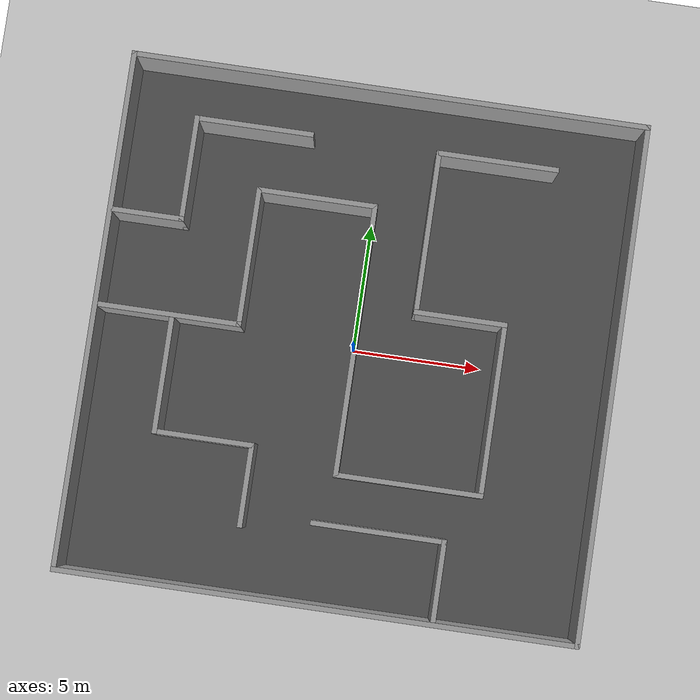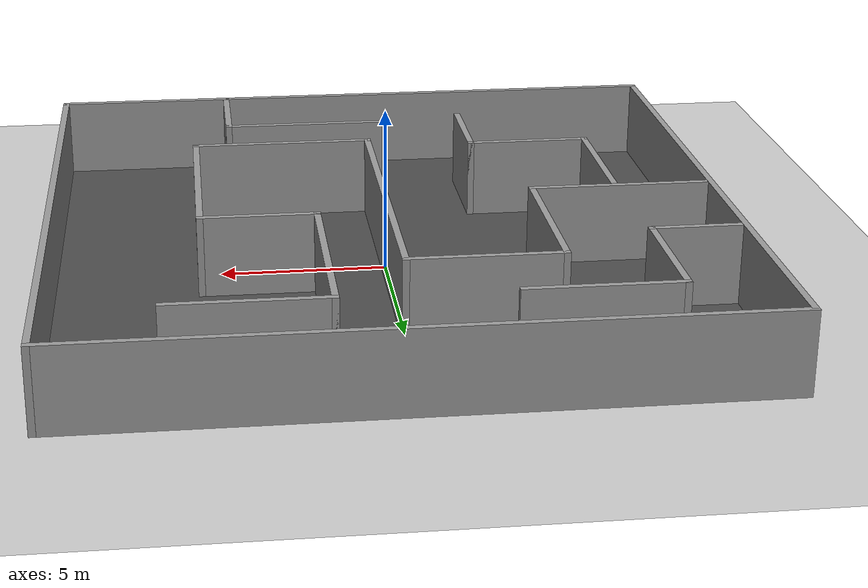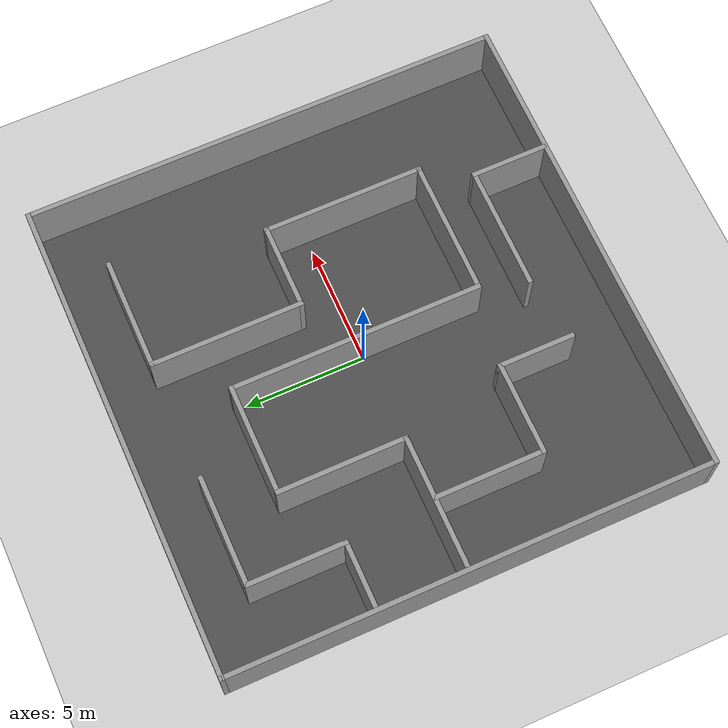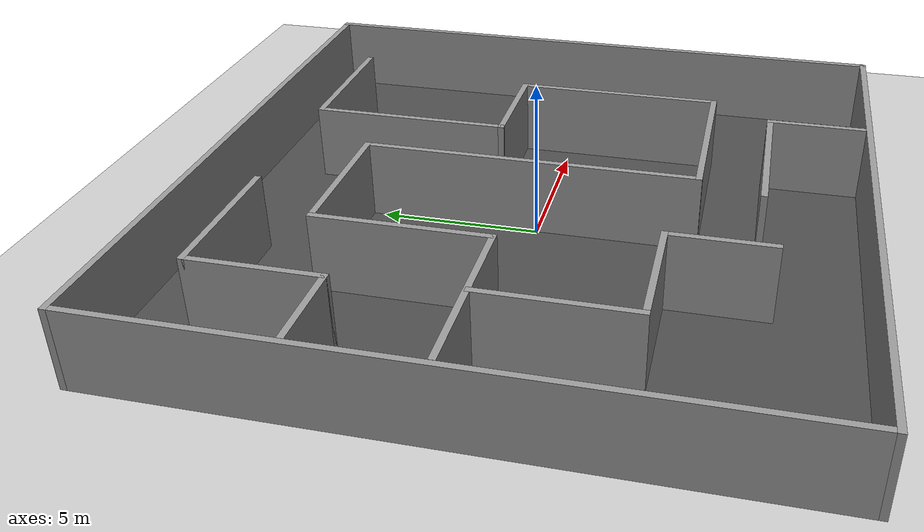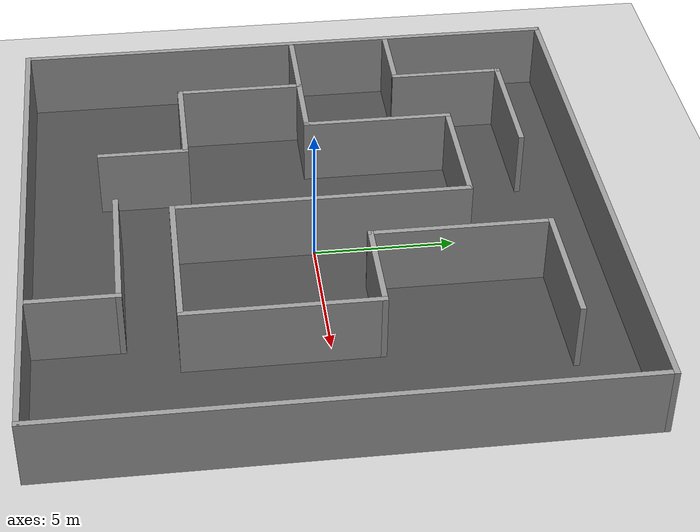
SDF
<sdf version="1.4">
 <world name="default">
  <light name="sun" type="directional">
   <pose>0 0 10 0 -0 0</pose>
   <diffuse>0.8 0.8 0.8 1</diffuse>
   <specular>0.2 0.2 0.2 1</specular>
   <attenuation>
    <range>1000</range>
    <constant>0.9</constant>
    <linear>0.01</linear>
    <quadratic>0.001</quadratic>
   </attenuation>
   <direction>-0.5 0.1 -0.9</direction>
  </light>
  <model name="ground_plane">
   <static>1</static>
   <link name="link">
    <collision name="collision">
     <geometry><plane><normal>0 0 1</normal><size>100 100</size></plane></geometry>
     <surface><friction><ode><mu>100</mu><mu2>50</mu2></ode></friction></surface>
    </collision>
    <visual name="visual">
     <cast_shadows>0</cast_shadows>
     <geometry><plane><normal>0 0 1</normal><size>100 100</size></plane></geometry>
     <material>
      <script><uri>file://media/materials/scripts/gazebo.material</uri><name>Gazebo/Grey</name></script>
     </material>
    </visual>
    <velocity_decay><linear>0</linear><angular>0</angular></velocity_decay>
   </link>
  </model>
  <physics type="ode">
   <max_step_size>0.001</max_step_size>
   <real_time_factor>1</real_time_factor>
   <real_time_update_rate>1000</real_time_update_rate>
   <gravity>0 0 -9.8</gravity>
  </physics>
  <scene><ambient>0.4 0.4 0.4 1</ambient><background>0.7 0.7 0.7 1</background><shadows>1</shadows></scene>
  <spherical_coordinates>
   <surface_model>EARTH_WGS84</surface_model>
   <latitude_deg>0</latitude_deg>
   <longitude_deg>0</longitude_deg>
   <elevation>0</elevation>
   <heading_deg>0</heading_deg>
  </spherical_coordinates>
  <model name="asphalt_plane">
   <static>1</static>
   <link name="link">
    <collision name="collision"><geometry><box><size>20 20 0.1</size></box></geometry></collision>
    <visual name="visual">
     <cast_shadows>0</cast_shadows>
     <geometry><box><size>20 20 0.1</size></box></geometry>
     <material>
      <script>
       <uri>model://asphalt_plane/materials/scripts</uri>
       <uri>model://asphalt_plane/materials/textures</uri>
       <name>vrc/asphalt</name>
      </script>
     </material>
    </visual>
    <velocity_decay><linear>0</linear><angular>0</angular></velocity_decay>
   </link>
  </model>
  <model name="house2d_2">
   <link name="Wall_2">
    <collision name="Wall_2_Collision">
     <geometry><box><size>20.2 0.2 2.5</size></box></geometry>
     <pose>0 0 1.25 0 -0 0</pose>
    </collision>
    <visual name="Wall_2_Visual">
     <pose>0 0 1.25 0 -0 0</pose>
     <geometry><box><size>20.2 0.2 2.5</size></box></geometry>
     <material>
      <script><uri>file://media/materials/scripts/gazebo.material</uri><name>Gazebo/Grey</name></script>
     </material>
    </visual>
    <velocity_decay><linear>0</linear><angular>0</angular></velocity_decay>
    <pose>-0 -10 0 0 -0 0</pose>
   </link>
   <link name="Wall_3">
    <collision name="Wall_3_Collision">
     <geometry><box><size>20.2 0.2 2.5</size></box></geometry>
     <pose>0 0 1.25 0 -0 0</pose>
    </collision>
    <visual name="Wall_3_Visual">
     <pose>0 0 1.25 0 -0 0</pose>
     <geometry><box><size>20.2 0.2 2.5</size></box></geometry>
     <material>
      <script><uri>file://media/materials/scripts/gazebo.material</uri><name>Gazebo/Grey</name></script>
     </material>
    </visual>
    <velocity_decay><linear>0</linear><angular>0</angular></velocity_decay>
    <pose>10 0 0 0 -0 1.5708</pose>
   </link>
   <link name="Wall_33">
    <collision name="Wall_33_Collision">
     <geometry><box><size>5.55025 0.2 2.5</size></box></geometry>
     <pose>0 0 1.25 0 -0 0</pose>
    </collision>
    <visual name="Wall_33_Visual">
     <pose>0 0 1.25 0 -0 0</pose>
     <geometry><box><size>5.55025 0.2 2.5</size></box></geometry>
     <material>
      <script><uri>file://media/materials/scripts/gazebo.material</uri><name>Gazebo/Grey</name></script>
     </material>
    </visual>
    <velocity_decay><linear>0</linear><angular>0</angular></velocity_decay>
    <pose>-7.12043 0.208203 0 0 -0 0</pose>
   </link>
   <link name="Wall_34">
    <collision name="Wall_34_Collision">
     <geometry><box><size>5.44325 0.2 2.5</size></box></geometry>
     <pose>0 0 1.25 0 -0 0</pose>
    </collision>
    <visual name="Wall_34_Visual">
     <pose>0 0 1.25 0 -0 0</pose>
     <geometry><box><size>5.44325 0.2 2.5</size></box></geometry>
     <material>
      <script><uri>file://media/materials/scripts/gazebo.material</uri><name>Gazebo/Grey</name></script>
     </material>
    </visual>
    <velocity_decay><linear>0</linear><angular>0</angular></velocity_decay>
    <pose>-4.4453 2.82983 0 0 -0 1.5708</pose>
   </link>
   <link name="Wall_35">
    <collision name="Wall_35_Collision">
     <geometry><box><size>4.69421 0.2 2.5</size></box></geometry>
     <pose>0 0 1.25 0 -0 0</pose>
    </collision>
    <visual name="Wall_35_Visual">
     <pose>0 0 1.25 0 -0 0</pose>
     <geometry><box><size>4.69421 0.2 2.5</size></box></geometry>
     <material>
      <script><uri>file://media/materials/scripts/gazebo.material</uri><name>Gazebo/Grey</name></script>
     </material>
    </visual>
    <velocity_decay><linear>0</linear><angular>0</angular></velocity_decay>
    <pose>-2.1982 5.45145 0 0 -0 0</pose>
   </link>
   <link name="Wall_36">
    <collision name="Wall_36_Collision">
     <geometry><box><size>10.5795 0.2 2.5</size></box></geometry>
     <pose>0 0 1.25 0 -0 0</pose>
    </collision>
    <visual name="Wall_36_Visual">
     <pose>0 0 1.25 0 -0 0</pose>
     <geometry><box><size>10.5795 0.2 2.5</size></box></geometry>
     <material>
      <script><uri>file://media/materials/scripts/gazebo.material</uri><name>Gazebo/Grey</name></script>
     </material>
    </visual>
    <velocity_decay><linear>0</linear><angular>0</angular></velocity_decay>
    <pose>0.048906 0.261706 0 0 0 -1.5708</pose>
   </link>
   <link name="Wall_37">
    <collision name="Wall_37_Collision">
     <geometry><box><size>5.76426 0.2 2.5</size></box></geometry>
     <pose>0 0 1.25 0 -0 0</pose>
    </collision>
    <visual name="Wall_37_Visual">
     <pose>0 0 1.25 0 -0 0</pose>
     <geometry><box><size>5.76426 0.2 2.5</size></box></geometry>
     <material>
      <script><uri>file://media/materials/scripts/gazebo.material</uri><name>Gazebo/Grey</name></script>
     </material>
    </visual>
    <velocity_decay><linear>0</linear><angular>0</angular></velocity_decay>
    <pose>2.83104 -4.92804 0 0 -0 0</pose>
   </link>
   <link name="Wall_38">
    <collision name="Wall_38_Collision">
     <geometry><box><size>6.78081 0.2 2.5</size></box></geometry>
     <pose>0 0 1.25 0 -0 0</pose>
    </collision>
    <visual name="Wall_38_Visual">
     <pose>0 0 1.25 0 -0 0</pose>
     <geometry><box><size>6.78081 0.2 2.5</size></box></geometry>
     <material>
      <script><uri>file://media/materials/scripts/gazebo.material</uri><name>Gazebo/Grey</name></script>
     </material>
    </visual>
    <velocity_decay><linear>0</linear><angular>0</angular></velocity_decay>
    <pose>5.61317 -1.63763 0 0 -0 1.5708</pose>
   </link>
   <link name="Wall_39">
    <collision name="Wall_39_Collision">
     <geometry><box><size>3.62416 0.2 2.5</size></box></geometry>
     <pose>0 0 1.25 0 -0 0</pose>
    </collision>
    <visual name="Wall_39_Visual">
     <pose>0 0 1.25 0 -0 0</pose>
     <geometry><box><size>3.62416 0.2 2.5</size></box></geometry>
     <material>
      <script><uri>file://media/materials/scripts/gazebo.material</uri><name>Gazebo/Grey</name></script>
     </material>
    </visual>
    <velocity_decay><linear>0</linear><angular>0</angular></velocity_decay>
    <pose>3.90109 1.65277 0 0 -0 3.14159</pose>
   </link>
   <link name="Wall_4">
    <collision name="Wall_4_Collision">
     <geometry><box><size>20.2 0.2 2.5</size></box></geometry>
     <pose>0 0 1.25 0 -0 0</pose>
    </collision>
    <visual name="Wall_4_Visual">
     <pose>0 0 1.25 0 -0 0</pose>
     <geometry><box><size>20.2 0.2 2.5</size></box></geometry>
     <material>
      <script><uri>file://media/materials/scripts/gazebo.material</uri><name>Gazebo/Grey</name></script>
     </material>
    </visual>
    <velocity_decay><linear>0</linear><angular>0</angular></velocity_decay>
    <pose>-0 10 0 0 -0 3.14159</pose>
   </link>
   <link name="Wall_40">
    <collision name="Wall_40_Collision">
     <geometry><box><size>6.40629 0.2 2.5</size></box></geometry>
     <pose>0 0 1.25 0 -0 0</pose>
    </collision>
    <visual name="Wall_40_Visual">
     <pose>0 0 1.25 0 -0 0</pose>
     <geometry><box><size>6.40629 0.2 2.5</size></box></geometry>
     <material>
      <script><uri>file://media/materials/scripts/gazebo.material</uri><name>Gazebo/Grey</name></script>
     </material>
    </visual>
    <velocity_decay><linear>0</linear><angular>0</angular></velocity_decay>
    <pose>2.18901 4.75592 0 0 -0 1.5708</pose>
   </link>
   <link name="Wall_41">
    <collision name="Wall_41_Collision">
     <geometry><box><size>4.74771 0.2 2.5</size></box></geometry>
     <pose>0 0 1.25 0 -0 0</pose>
    </collision>
    <visual name="Wall_41_Visual">
     <pose>0 0 1.25 0 -0 0</pose>
     <geometry><box><size>4.74771 0.2 2.5</size></box></geometry>
     <material>
      <script><uri>file://media/materials/scripts/gazebo.material</uri><name>Gazebo/Grey</name></script>
     </material>
    </visual>
    <velocity_decay><linear>0</linear><angular>0</angular></velocity_decay>
    <pose>4.46286 7.85906 0 0 -0 0</pose>
   </link>
   <link name="Wall_43">
    <collision name="Wall_43_Collision">
     <geometry><box><size>4.64071 0.2 2.5</size></box></geometry>
     <pose>0 0 1.25 0 -0 0</pose>
    </collision>
    <visual name="Wall_43_Visual">
     <pose>0 0 1.25 0 -0 0</pose>
     <geometry><box><size>4.64071 0.2 2.5</size></box></geometry>
     <material>
      <script><uri>file://media/materials/scripts/gazebo.material</uri><name>Gazebo/Grey</name></script>
     </material>
    </visual>
    <velocity_decay><linear>0</linear><angular>0</angular></velocity_decay>
    <pose>-7.01342 -2.06565 0 0 0 -1.5708</pose>
   </link>
   <link name="Wall_44">
    <collision name="Wall_44_Collision">
     <geometry><box><size>3.94517 0.2 2.5</size></box></geometry>
     <pose>0 0 1.25 0 -0 0</pose>
    </collision>
    <visual name="Wall_44_Visual">
     <pose>0 0 1.25 0 -0 0</pose>
     <geometry><box><size>3.94517 0.2 2.5</size></box></geometry>
     <material>
      <script><uri>file://media/materials/scripts/gazebo.material</uri><name>Gazebo/Grey</name></script>
     </material>
    </visual>
    <velocity_decay><linear>0</linear><angular>0</angular></velocity_decay>
    <pose>-5.14084 -4.28601 0 0 -0 0</pose>
   </link>
   <link name="Wall_45">
    <collision name="Wall_45_Collision">
     <geometry><box><size>3.24964 0.2 2.5</size></box></geometry>
     <pose>0 0 1.25 0 -0 0</pose>
    </collision>
    <visual name="Wall_45_Visual">
     <pose>0 0 1.25 0 -0 0</pose>
     <geometry><box><size>3.24964 0.2 2.5</size></box></geometry>
     <material>
      <script><uri>file://media/materials/scripts/gazebo.material</uri><name>Gazebo/Grey</name></script>
     </material>
    </visual>
    <velocity_decay><linear>0</linear><angular>0</angular></velocity_decay>
    <pose>-3.26825 -5.81083 0 0 0 -1.5708</pose>
   </link>
   <link name="Wall_47">
    <collision name="Wall_47_Collision">
     <geometry><box><size>2.82162 0.2 2.5</size></box></geometry>
     <pose>0 0 1.25 0 -0 0</pose>
    </collision>
    <visual name="Wall_47_Visual">
     <pose>0 0 1.25 0 -0 0</pose>
     <geometry><box><size>2.82162 0.2 2.5</size></box></geometry>
     <material>
      <script><uri>file://media/materials/scripts/gazebo.material</uri><name>Gazebo/Grey</name></script>
     </material>
    </visual>
    <velocity_decay><linear>0</linear><angular>0</angular></velocity_decay>
    <pose>-8.53825 3.89988 0 0 -0 0</pose>
   </link>
   <link name="Wall_48">
    <collision name="Wall_48_Collision">
     <geometry><box><size>4.15918 0.2 2.5</size></box></geometry>
     <pose>0 0 1.25 0 -0 0</pose>
    </collision>
    <visual name="Wall_48_Visual">
     <pose>0 0 1.25 0 -0 0</pose>
     <geometry><box><size>4.15918 0.2 2.5</size></box></geometry>
     <material>
      <script><uri>file://media/materials/scripts/gazebo.material</uri><name>Gazebo/Grey</name></script>
     </material>
    </visual>
    <velocity_decay><linear>0</linear><angular>0</angular></velocity_decay>
    <pose>-7.22743 5.87947 0 0 -0 1.5708</pose>
   </link>
   <link name="Wall_49">
    <collision name="Wall_49_Collision">
     <geometry><box><size>4.64071 0.2 2.5</size></box></geometry>
     <pose>0 0 1.25 0 -0 0</pose>
    </collision>
    <visual name="Wall_49_Visual">
     <pose>0 0 1.25 0 -0 0</pose>
     <geometry><box><size>4.64071 0.2 2.5</size></box></geometry>
     <material>
      <script><uri>file://media/materials/scripts/gazebo.material</uri><name>Gazebo/Grey</name></script>
     </material>
    </visual>
    <velocity_decay><linear>0</linear><angular>0</angular></velocity_decay>
    <pose>-5.00708 7.85906 0 0 -0 0</pose>
   </link>
   <link name="Wall_5">
    <collision name="Wall_5_Collision">
     <geometry><box><size>20 0.2 2.5</size></box></geometry>
     <pose>0 0 1.25 0 -0 0</pose>
    </collision>
    <visual name="Wall_5_Visual">
     <pose>0 0 1.25 0 -0 0</pose>
     <geometry><box><size>20 0.2 2.5</size></box></geometry>
     <material>
      <script><uri>file://media/materials/scripts/gazebo.material</uri><name>Gazebo/Grey</name></script>
     </material>
    </visual>
    <velocity_decay><linear>0</linear><angular>0</angular></velocity_decay>
    <pose>-10 0.1 0 0 0 -1.5708</pose>
   </link>
   <link name="Wall_51">
    <collision name="Wall_51_Collision">
     <geometry><box><size>3.24964 0.2 2.5</size></box></geometry>
     <pose>0 0 1.25 0 -0 0</pose>
    </collision>
    <visual name="Wall_51_Visual">
     <pose>0 0 1.25 0 -0 0</pose>
     <geometry><box><size>3.24964 0.2 2.5</size></box></geometry>
     <material>
      <script><uri>file://media/materials/scripts/gazebo.material</uri><name>Gazebo/Grey</name></script>
     </material>
    </visual>
    <velocity_decay><linear>0</linear><angular>0</angular></velocity_decay>
    <pose>4.48961 -8.37895 0 0 -0 1.5708</pose>
   </link>
   <link name="Wall_52">
    <collision name="Wall_52_Collision">
     <geometry><box><size>5.22924 0.2 2.5</size></box></geometry>
     <pose>0 0 1.25 0 -0 0</pose>
    </collision>
    <visual name="Wall_52_Visual">
     <pose>0 0 1.25 0 -0 0</pose>
     <geometry><box><size>5.22924 0.2 2.5</size></box></geometry>
     <material>
      <script><uri>file://media/materials/scripts/gazebo.material</uri><name>Gazebo/Grey</name></script>
     </material>
    </visual>
    <velocity_decay><linear>0</linear><angular>0</angular></velocity_decay>
    <pose>1.975 -6.85413 0 0 -0 3.14159</pose>
   </link>
   <static>1</static>
  </model>
 </world>
</sdf>
